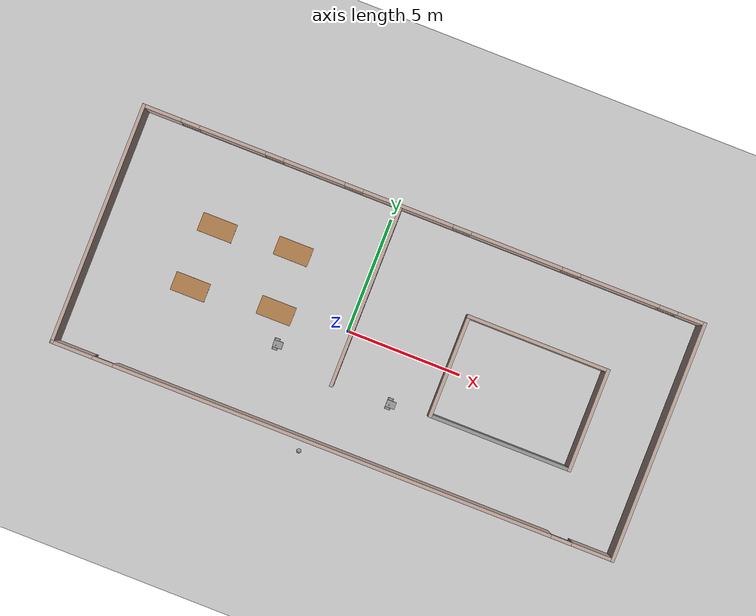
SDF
<sdf version="1.6">
 <world name="default">
  <plugin name="welcome" filename="libwelcome.so"/>
  <light name="sun" type="directional">
   <pose>0 0 10 0 -0 0</pose>
   <diffuse>0.8 0.8 0.8 1</diffuse>
   <specular>0.2 0.2 0.2 1</specular>
   <attenuation>
    <range>1000</range>
    <constant>0.9</constant>
    <linear>0.01</linear>
    <quadratic>0.001</quadratic>
   </attenuation>
   <direction>-0.5 0.1 -0.9</direction>
  </light>
  <model name="ground_plane">
   <static>1</static>
   <link name="link">
    <collision name="collision">
     <geometry><plane><normal>0 0 1</normal><size>100 100</size></plane></geometry>
     <surface>
      <contact><collide_bitmask>65535</collide_bitmask></contact>
      <friction><ode><mu>100</mu><mu2>50</mu2></ode></friction>
     </surface>
    </collision>
    <visual name="visual">
     <cast_shadows>0</cast_shadows>
     <geometry><plane><normal>0 0 1</normal><size>100 100</size></plane></geometry>
     <material>
      <script><uri>file://media/materials/scripts/gazebo.material</uri><name>Gazebo/Grey</name></script>
     </material>
    </visual>
   </link>
  </model>
  <gravity>0 0 -9.8</gravity>
  <magnetic_field>6e-06 2.3e-05 -4.2e-05</magnetic_field>
  <atmosphere type="adiabatic"/>
  <physics name="default_physics" default="0" type="ode">
   <max_step_size>0.001</max_step_size>
   <real_time_factor>1</real_time_factor>
   <real_time_update_rate>1000</real_time_update_rate>
  </physics>
  <scene><ambient>0.4 0.4 0.4 1</ambient><background>0.7 0.7 0.7 1</background><shadows>1</shadows></scene>
  <audio><device>default</device></audio>
  <spherical_coordinates>
   <surface_model>EARTH_WGS84</surface_model>
   <latitude_deg>0</latitude_deg>
   <longitude_deg>0</longitude_deg>
   <elevation>0</elevation>
   <heading_deg>0</heading_deg>
  </spherical_coordinates>
  <model name="mybuilding">
   <pose>1.1968 0.407049 0 0 -0 0</pose>
   <link name="Wall_1">
    <collision name="Wall_1_Collision">
     <geometry><box><size>10.5 0.15 2.5</size></box></geometry>
     <pose>0 0 1.25 0 -0 0</pose>
    </collision>
    <visual name="Wall_1_Visual">
     <pose>0 0 1.25 0 -0 0</pose>
     <geometry><box><size>10.5 0.15 2.5</size></box></geometry>
     <material>
      <script><uri>file://media/materials/scripts/gazebo.material</uri><name>Gazebo/Grey</name></script>
      <ambient>0.760784 0.662745 0.627451 1</ambient>
     </material>
     <meta><layer>0</layer></meta>
    </visual>
    <pose>-12.3 -0 0 0 -0 1.5708</pose>
   </link>
   <link name="Wall_10">
    <collision name="Wall_10_Collision">
     <geometry><box><size>4.5 0.15 2.5</size></box></geometry>
     <pose>0 0 1.25 0 -0 0</pose>
    </collision>
    <visual name="Wall_10_Visual">
     <pose>0 0 1.25 0 -0 0</pose>
     <geometry><box><size>4.5 0.15 2.5</size></box></geometry>
     <material>
      <script><uri>file://media/materials/scripts/gazebo.material</uri><name>Gazebo/Grey</name></script>
      <ambient>0.760784 0.662745 0.627451 1</ambient>
     </material>
     <meta><layer>0</layer></meta>
    </visual>
    <pose>9.31281 -0.20305 0 0 -0 1.5708</pose>
   </link>
   <link name="Wall_11">
    <collision name="Wall_11_Collision">
     <geometry><box><size>6.25 0.15 2.5</size></box></geometry>
     <pose>0 0 1.25 0 -0 0</pose>
    </collision>
    <visual name="Wall_11_Visual">
     <pose>0 0 1.25 0 -0 0</pose>
     <geometry><box><size>6.25 0.15 2.5</size></box></geometry>
     <material>
      <script><uri>file://media/materials/scripts/gazebo.material</uri><name>Gazebo/Grey</name></script>
      <ambient>0.760784 0.662745 0.627451 1</ambient>
     </material>
     <meta><layer>0</layer></meta>
    </visual>
    <pose>6.26281 1.97195 0 0 -0 3.14159</pose>
   </link>
   <link name="Wall_2">
    <pose>0 5.175 0 0 -0 0</pose>
    <visual name="Wall_2_Visual_0">
     <pose>-11.5143 0 1.25 0 -0 0</pose>
     <geometry><box><size>1.72131 0.15 2.5</size></box></geometry>
     <material>
      <script><uri>file://media/materials/scripts/gazebo.material</uri><name>Gazebo/Grey</name></script>
      <ambient>0.760784 0.662745 0.627451 1</ambient>
     </material>
     <meta><layer>0</layer></meta>
    </visual>
    <collision name="Wall_2_Collision_0">
     <geometry><box><size>1.72131 0.15 2.5</size></box></geometry>
     <pose>-11.5143 0 1.25 0 -0 0</pose>
    </collision>
    <visual name="Wall_2_Visual_1">
     <pose>0.860654 0 0.25 0 -0 0</pose>
     <geometry><box><size>23.0287 0.15 0.5</size></box></geometry>
     <material>
      <script><uri>file://media/materials/scripts/gazebo.material</uri><name>Gazebo/Grey</name></script>
      <ambient>0.760784 0.662745 0.627451 1</ambient>
     </material>
     <meta><layer>0</layer></meta>
    </visual>
    <collision name="Wall_2_Collision_1">
     <geometry><box><size>23.0287 0.15 0.5</size></box></geometry>
     <pose>0.860654 0 0.25 0 -0 0</pose>
    </collision>
    <visual name="Wall_2_Visual_2">
     <pose>-8.40681 0 1.5 0 -0 0</pose>
     <geometry><box><size>2.89377 0.15 2</size></box></geometry>
     <material>
      <script><uri>file://media/materials/scripts/gazebo.material</uri><name>Gazebo/Grey</name></script>
      <ambient>0.760784 0.662745 0.627451 1</ambient>
     </material>
     <meta><layer>0</layer></meta>
    </visual>
    <collision name="Wall_2_Collision_2">
     <geometry><box><size>2.89377 0.15 2</size></box></geometry>
     <pose>-8.40681 0 1.5 0 -0 0</pose>
    </collision>
    <visual name="Wall_2_Visual_3">
     <pose>-4.81857 0 1.5 0 -0 0</pose>
     <geometry><box><size>2.6827 0.15 2</size></box></geometry>
     <material>
      <script><uri>file://media/materials/scripts/gazebo.material</uri><name>Gazebo/Grey</name></script>
      <ambient>0.760784 0.662745 0.627451 1</ambient>
     </material>
     <meta><layer>0</layer></meta>
    </visual>
    <collision name="Wall_2_Collision_3">
     <geometry><box><size>2.6827 0.15 2</size></box></geometry>
     <pose>-4.81857 0 1.5 0 -0 0</pose>
    </collision>
    <visual name="Wall_2_Visual_4">
     <pose>-0.702659 0 1.5 0 -0 0</pose>
     <geometry><box><size>3.94913 0.15 2</size></box></geometry>
     <material>
      <script><uri>file://media/materials/scripts/gazebo.material</uri><name>Gazebo/Grey</name></script>
      <ambient>0.760784 0.662745 0.627451 1</ambient>
     </material>
     <meta><layer>0</layer></meta>
    </visual>
    <collision name="Wall_2_Collision_4">
     <geometry><box><size>3.94913 0.15 2</size></box></geometry>
     <pose>-0.702659 0 1.5 0 -0 0</pose>
    </collision>
    <visual name="Wall_2_Visual_5">
     <pose>4.06406 0 1.5 0 -0 0</pose>
     <geometry><box><size>3.98431 0.15 2</size></box></geometry>
     <material>
      <script><uri>file://media/materials/scripts/gazebo.material</uri><name>Gazebo/Grey</name></script>
      <ambient>0.760784 0.662745 0.627451 1</ambient>
     </material>
     <meta><layer>0</layer></meta>
    </visual>
    <collision name="Wall_2_Collision_5">
     <geometry><box><size>3.98431 0.15 2</size></box></geometry>
     <pose>4.06406 0 1.5 0 -0 0</pose>
    </collision>
    <visual name="Wall_2_Visual_6">
     <pose>8.58454 0 1.5 0 -0 0</pose>
     <geometry><box><size>3.45663 0.15 2</size></box></geometry>
     <material>
      <script><uri>file://media/materials/scripts/gazebo.material</uri><name>Gazebo/Grey</name></script>
      <ambient>0.760784 0.662745 0.627451 1</ambient>
     </material>
     <meta><layer>0</layer></meta>
    </visual>
    <collision name="Wall_2_Collision_6">
     <geometry><box><size>3.45663 0.15 2</size></box></geometry>
     <pose>8.58454 0 1.5 0 -0 0</pose>
    </collision>
    <visual name="Wall_2_Visual_7">
     <pose>11.7439 0 1.5 0 -0 0</pose>
     <geometry><box><size>1.26215 0.15 2</size></box></geometry>
     <material>
      <script><uri>file://media/materials/scripts/gazebo.material</uri><name>Gazebo/Grey</name></script>
      <ambient>0.760784 0.662745 0.627451 1</ambient>
     </material>
     <meta><layer>0</layer></meta>
    </visual>
    <collision name="Wall_2_Collision_7">
     <geometry><box><size>1.26215 0.15 2</size></box></geometry>
     <pose>11.7439 0 1.5 0 -0 0</pose>
    </collision>
    <visual name="Wall_2_Visual_8">
     <pose>-10.2537 0 1.9 0 -0 0</pose>
     <geometry><box><size>0.8 0.15 1.2</size></box></geometry>
     <material>
      <script><uri>file://media/materials/scripts/gazebo.material</uri><name>Gazebo/Grey</name></script>
      <ambient>0.760784 0.662745 0.627451 1</ambient>
     </material>
     <meta><layer>0</layer></meta>
    </visual>
    <collision name="Wall_2_Collision_8">
     <geometry><box><size>0.8 0.15 1.2</size></box></geometry>
     <pose>-10.2537 0 1.9 0 -0 0</pose>
    </collision>
    <visual name="Wall_2_Visual_9">
     <pose>-6.55992 0 1.9 0 -0 0</pose>
     <geometry><box><size>0.8 0.15 1.2</size></box></geometry>
     <material>
      <script><uri>file://media/materials/scripts/gazebo.material</uri><name>Gazebo/Grey</name></script>
      <ambient>0.760784 0.662745 0.627451 1</ambient>
     </material>
     <meta><layer>0</layer></meta>
    </visual>
    <collision name="Wall_2_Collision_9">
     <geometry><box><size>0.8 0.15 1.2</size></box></geometry>
     <pose>-6.55992 0 1.9 0 -0 0</pose>
    </collision>
    <visual name="Wall_2_Visual_10">
     <pose>-3.07722 0 1.9 0 -0 0</pose>
     <geometry><box><size>0.8 0.15 1.2</size></box></geometry>
     <material>
      <script><uri>file://media/materials/scripts/gazebo.material</uri><name>Gazebo/Grey</name></script>
      <ambient>0.760784 0.662745 0.627451 1</ambient>
     </material>
     <meta><layer>0</layer></meta>
    </visual>
    <collision name="Wall_2_Collision_10">
     <geometry><box><size>0.8 0.15 1.2</size></box></geometry>
     <pose>-3.07722 0 1.9 0 -0 0</pose>
    </collision>
    <visual name="Wall_2_Visual_11">
     <pose>1.67191 0 1.9 0 -0 0</pose>
     <geometry><box><size>0.8 0.15 1.2</size></box></geometry>
     <material>
      <script><uri>file://media/materials/scripts/gazebo.material</uri><name>Gazebo/Grey</name></script>
      <ambient>0.760784 0.662745 0.627451 1</ambient>
     </material>
     <meta><layer>0</layer></meta>
    </visual>
    <collision name="Wall_2_Collision_11">
     <geometry><box><size>0.8 0.15 1.2</size></box></geometry>
     <pose>1.67191 0 1.9 0 -0 0</pose>
    </collision>
    <visual name="Wall_2_Visual_12">
     <pose>6.45622 0 1.9 0 -0 0</pose>
     <geometry><box><size>0.8 0.15 1.2</size></box></geometry>
     <material>
      <script><uri>file://media/materials/scripts/gazebo.material</uri><name>Gazebo/Grey</name></script>
      <ambient>0.760784 0.662745 0.627451 1</ambient>
     </material>
     <meta><layer>0</layer></meta>
    </visual>
    <collision name="Wall_2_Collision_12">
     <geometry><box><size>0.8 0.15 1.2</size></box></geometry>
     <pose>6.45622 0 1.9 0 -0 0</pose>
    </collision>
    <visual name="Wall_2_Visual_13">
     <pose>10.7128 0 1.9 0 -0 0</pose>
     <geometry><box><size>0.8 0.15 1.2</size></box></geometry>
     <material>
      <script><uri>file://media/materials/scripts/gazebo.material</uri><name>Gazebo/Grey</name></script>
      <ambient>0.760784 0.662745 0.627451 1</ambient>
     </material>
     <meta><layer>0</layer></meta>
    </visual>
    <collision name="Wall_2_Collision_13">
     <geometry><box><size>0.8 0.15 1.2</size></box></geometry>
     <pose>10.7128 0 1.9 0 -0 0</pose>
    </collision>
   </link>
   <link name="Wall_3">
    <collision name="Wall_3_Collision">
     <geometry><box><size>10.5 0.15 2.5</size></box></geometry>
     <pose>0 0 1.25 0 -0 0</pose>
    </collision>
    <visual name="Wall_3_Visual">
     <pose>0 0 1.25 0 -0 0</pose>
     <geometry><box><size>10.5 0.15 2.5</size></box></geometry>
     <material>
      <script><uri>file://media/materials/scripts/gazebo.material</uri><name>Gazebo/Grey</name></script>
      <ambient>0.760784 0.662745 0.627451 1</ambient>
     </material>
     <meta><layer>0</layer></meta>
    </visual>
    <pose>12.3 -0 0 0 -0 -1.5708</pose>
   </link>
   <link name="Wall_4">
    <pose>0 -5.175 0 0 -0 3.14159</pose>
    <visual name="Wall_4_Visual_0">
     <pose>-11.4347 0 1.25 0 -0 0</pose>
     <geometry><box><size>1.88055 0.15 2.5</size></box></geometry>
     <material>
      <script><uri>file://media/materials/scripts/gazebo.material</uri><name>Gazebo/Grey</name></script>
      <ambient>0.760784 0.662745 0.627451 1</ambient>
     </material>
     <meta><layer>0</layer></meta>
    </visual>
    <collision name="Wall_4_Collision_0">
     <geometry><box><size>1.88055 0.15 2.5</size></box></geometry>
     <pose>-11.4347 0 1.25 0 -0 0</pose>
    </collision>
    <visual name="Wall_4_Visual_1">
     <pose>0.016673 0 1.25 0 -0 0</pose>
     <geometry><box><size>19.2223 0.15 2.5</size></box></geometry>
     <material>
      <script><uri>file://media/materials/scripts/gazebo.material</uri><name>Gazebo/Grey</name></script>
      <ambient>0.760784 0.662745 0.627451 1</ambient>
     </material>
     <meta><layer>0</layer></meta>
    </visual>
    <collision name="Wall_4_Collision_1">
     <geometry><box><size>19.2223 0.15 2.5</size></box></geometry>
     <pose>0.016673 0 1.25 0 -0 0</pose>
    </collision>
    <visual name="Wall_4_Visual_2">
     <pose>11.4514 0 1.25 0 -0 0</pose>
     <geometry><box><size>1.8472 0.15 2.5</size></box></geometry>
     <material>
      <script><uri>file://media/materials/scripts/gazebo.material</uri><name>Gazebo/Grey</name></script>
      <ambient>0.760784 0.662745 0.627451 1</ambient>
     </material>
     <meta><layer>0</layer></meta>
    </visual>
    <collision name="Wall_4_Collision_2">
     <geometry><box><size>1.8472 0.15 2.5</size></box></geometry>
     <pose>11.4514 0 1.25 0 -0 0</pose>
    </collision>
    <visual name="Wall_4_Visual_3">
     <pose>-10.0445 0 2.25 0 -0 0</pose>
     <geometry><box><size>0.9 0.15 0.5</size></box></geometry>
     <material>
      <script><uri>file://media/materials/scripts/gazebo.material</uri><name>Gazebo/Grey</name></script>
      <ambient>0.760784 0.662745 0.627451 1</ambient>
     </material>
     <meta><layer>0</layer></meta>
    </visual>
    <collision name="Wall_4_Collision_3">
     <geometry><box><size>0.9 0.15 0.5</size></box></geometry>
     <pose>-10.0445 0 2.25 0 -0 0</pose>
    </collision>
    <visual name="Wall_4_Visual_4">
     <pose>10.0778 0 2.25 0 -0 0</pose>
     <geometry><box><size>0.9 0.15 0.5</size></box></geometry>
     <material>
      <script><uri>file://media/materials/scripts/gazebo.material</uri><name>Gazebo/Grey</name></script>
      <ambient>0.760784 0.662745 0.627451 1</ambient>
     </material>
     <meta><layer>0</layer></meta>
    </visual>
    <collision name="Wall_4_Collision_4">
     <geometry><box><size>0.9 0.15 0.5</size></box></geometry>
     <pose>10.0778 0 2.25 0 -0 0</pose>
    </collision>
   </link>
   <link name="Wall_6">
    <collision name="Wall_6_Collision">
     <geometry><box><size>8 0.15 2.5</size></box></geometry>
     <pose>0 0 1.25 0 -0 0</pose>
    </collision>
    <visual name="Wall_6_Visual">
     <pose>0 0 1.25 0 -0 0</pose>
     <geometry><box><size>8 0.15 2.5</size></box></geometry>
     <material>
      <script><uri>file://media/materials/scripts/gazebo.material</uri><name>Gazebo/Grey</name></script>
      <ambient>0.760784 0.662745 0.627451 1</ambient>
     </material>
     <meta><layer>0</layer></meta>
    </visual>
    <pose>-1.00864 1.24822 0 0 -0 -1.5708</pose>
   </link>
   <link name="Wall_8">
    <collision name="Wall_8_Collision">
     <geometry><box><size>4.5 0.15 2.5</size></box></geometry>
     <pose>0 0 1.25 0 -0 0</pose>
    </collision>
    <visual name="Wall_8_Visual">
     <pose>0 0 1.25 0 -0 0</pose>
     <geometry><box><size>4.5 0.15 2.5</size></box></geometry>
     <material>
      <script><uri>file://media/materials/scripts/gazebo.material</uri><name>Gazebo/Grey</name></script>
      <ambient>0.760784 0.662745 0.627451 1</ambient>
     </material>
     <meta><layer>0</layer></meta>
    </visual>
    <pose>3.21281 -0.20305 0 0 -0 -1.5708</pose>
   </link>
   <link name="Wall_9">
    <collision name="Wall_9_Collision">
     <geometry><box><size>6.25 0.15 2.5</size></box></geometry>
     <pose>0 0 1.25 0 -0 0</pose>
    </collision>
    <visual name="Wall_9_Visual">
     <pose>0 0 1.25 0 -0 0</pose>
     <geometry><box><size>6.25 0.15 2.5</size></box></geometry>
     <material>
      <script><uri>file://media/materials/scripts/gazebo.material</uri><name>Gazebo/Grey</name></script>
      <ambient>1 1 1 1</ambient>
     </material>
     <meta><layer>0</layer></meta>
    </visual>
    <pose>6.26281 -2.37805 0 0 -0 0</pose>
   </link>
   <static>1</static>
  </model>
  <model name="myrobot">
   <link name="link_0">
    <inertial>
     <mass>1</mass>
     <inertia>
      <ixx>0.166667</ixx>
      <ixy>0</ixy>
      <ixz>0</ixz>
      <iyy>0.166667</iyy>
      <iyz>0</iyz>
      <izz>0.166667</izz>
     </inertia>
    </inertial>
    <pose>0.039967 -0.564596 0.577 0 -0 0</pose>
    <visual name="visual">
     <geometry><box><size>0.4 0.3 0.3</size></box></geometry>
     <material>
      <lighting>1</lighting>
      <script><uri>file://media/materials/scripts/gazebo.material</uri><name>Gazebo/Grey</name></script>
      <shader type="vertex"><normal_map>__default__</normal_map></shader>
      <ambient>0.3 0.3 0.3 1</ambient>
      <diffuse>0.7 0.7 0.7 1</diffuse>
      <specular>0.01 0.01 0.01 1</specular>
      <emissive>0 0 0 1</emissive>
     </material>
    </visual>
    <collision name="collision">
     <geometry><box><size>0.4 0.3 0.3</size></box></geometry>
     <surface>
      <friction>
       <ode><mu>1</mu><mu2>1</mu2><fdir1>0 0 0</fdir1><slip1>0</slip1><slip2>0</slip2></ode>
       <torsional>
        <coefficient>1</coefficient>
        <patch_radius>0</patch_radius>
        <surface_radius>0</surface_radius>
        <use_patch_radius>1</use_patch_radius>
        <ode><slip>0</slip></ode>
       </torsional>
      </friction>
      <bounce><restitution_coefficient>0</restitution_coefficient><threshold>1e+06</threshold></bounce>
      <contact>
       <collide_without_contact>0</collide_without_contact>
       <collide_without_contact_bitmask>1</collide_without_contact_bitmask>
       <collide_bitmask>1</collide_bitmask>
       <ode>
        <soft_cfm>0</soft_cfm>
        <soft_erp>0.2</soft_erp>
        <kp>1e+13</kp>
        <kd>1</kd>
        <max_vel>0.01</max_vel>
        <min_depth>0</min_depth>
       </ode>
       <bullet>
        <split_impulse>1</split_impulse>
        <split_impulse_penetration_threshold>-0.01</split_impulse_penetration_threshold>
        <soft_cfm>0</soft_cfm>
        <soft_erp>0.2</soft_erp>
        <kp>1e+13</kp>
        <kd>1</kd>
       </bullet>
      </contact>
     </surface>
    </collision>
   </link>
   <link name="link_1">
    <inertial>
     <mass>1</mass>
     <inertia><ixx>0.145833</ixx><ixy>0</ixy><ixz>0</ixz><iyy>0.145833</iyy><iyz>0</iyz><izz>0.125</izz></inertia>
    </inertial>
    <pose>-0.040033 -0.764596 0.477 1.5708 -0 0</pose>
    <visual name="visual">
     <geometry><cylinder><radius>0.12</radius><length>0.1</length></cylinder></geometry>
     <material>
      <lighting>1</lighting>
      <script><uri>file://media/materials/scripts/gazebo.material</uri><name>Gazebo/Grey</name></script>
      <shader type="vertex"><normal_map>__default__</normal_map></shader>
      <ambient>0.3 0.3 0.3 1</ambient>
      <diffuse>0.7 0.7 0.7 1</diffuse>
      <specular>0.01 0.01 0.01 1</specular>
      <emissive>0 0 0 1</emissive>
     </material>
    </visual>
    <collision name="collision">
     <geometry><cylinder><radius>0.12</radius><length>0.1</length></cylinder></geometry>
     <surface>
      <friction>
       <ode><mu>1</mu><mu2>1</mu2><fdir1>0 0 0</fdir1><slip1>0</slip1><slip2>0</slip2></ode>
       <torsional>
        <coefficient>1</coefficient>
        <patch_radius>0</patch_radius>
        <surface_radius>0</surface_radius>
        <use_patch_radius>1</use_patch_radius>
        <ode><slip>0</slip></ode>
       </torsional>
      </friction>
      <bounce><restitution_coefficient>0</restitution_coefficient><threshold>1e+06</threshold></bounce>
      <contact>
       <collide_without_contact>0</collide_without_contact>
       <collide_without_contact_bitmask>1</collide_without_contact_bitmask>
       <collide_bitmask>1</collide_bitmask>
       <ode>
        <soft_cfm>0</soft_cfm>
        <soft_erp>0.2</soft_erp>
        <kp>1e+13</kp>
        <kd>1</kd>
        <max_vel>0.01</max_vel>
        <min_depth>0</min_depth>
       </ode>
       <bullet>
        <split_impulse>1</split_impulse>
        <split_impulse_penetration_threshold>-0.01</split_impulse_penetration_threshold>
        <soft_cfm>0</soft_cfm>
        <soft_erp>0.2</soft_erp>
        <kp>1e+13</kp>
        <kd>1</kd>
       </bullet>
      </contact>
     </surface>
    </collision>
   </link>
   <link name="link_1_clone">
    <inertial>
     <mass>1</mass>
     <inertia><ixx>0.145833</ixx><ixy>0</ixy><ixz>0</ixz><iyy>0.145833</iyy><iyz>0</iyz><izz>0.125</izz></inertia>
    </inertial>
    <pose>-0.040033 -0.364596 0.477 1.5708 -0 0</pose>
    <visual name="visual">
     <geometry><cylinder><radius>0.12</radius><length>0.1</length></cylinder></geometry>
     <material>
      <lighting>1</lighting>
      <script><uri>file://media/materials/scripts/gazebo.material</uri><name>Gazebo/Grey</name></script>
      <shader type="vertex"><normal_map>__default__</normal_map></shader>
      <ambient>0.3 0.3 0.3 1</ambient>
      <diffuse>0.7 0.7 0.7 1</diffuse>
      <specular>0.01 0.01 0.01 1</specular>
      <emissive>0 0 0 1</emissive>
     </material>
    </visual>
    <collision name="collision">
     <geometry><cylinder><radius>0.12</radius><length>0.1</length></cylinder></geometry>
     <surface>
      <friction>
       <ode><mu>1</mu><mu2>1</mu2><fdir1>0 0 0</fdir1><slip1>0</slip1><slip2>0</slip2></ode>
       <torsional>
        <coefficient>1</coefficient>
        <patch_radius>0</patch_radius>
        <surface_radius>0</surface_radius>
        <use_patch_radius>1</use_patch_radius>
        <ode><slip>0</slip></ode>
       </torsional>
      </friction>
      <bounce><restitution_coefficient>0</restitution_coefficient><threshold>1e+06</threshold></bounce>
      <contact>
       <collide_without_contact>0</collide_without_contact>
       <collide_without_contact_bitmask>1</collide_without_contact_bitmask>
       <collide_bitmask>1</collide_bitmask>
       <ode>
        <soft_cfm>0</soft_cfm>
        <soft_erp>0.2</soft_erp>
        <kp>1e+13</kp>
        <kd>1</kd>
        <max_vel>0.01</max_vel>
        <min_depth>0</min_depth>
       </ode>
       <bullet>
        <split_impulse>1</split_impulse>
        <split_impulse_penetration_threshold>-0.01</split_impulse_penetration_threshold>
        <soft_cfm>0</soft_cfm>
        <soft_erp>0.2</soft_erp>
        <kp>1e+13</kp>
        <kd>1</kd>
       </bullet>
      </contact>
     </surface>
    </collision>
   </link>
   <link name="link_2">
    <inertial>
     <mass>1</mass>
     <inertia><ixx>0.1</ixx><ixy>0</ixy><ixz>0</ixz><iyy>0.1</iyy><iyz>0</iyz><izz>0.1</izz></inertia>
    </inertial>
    <pose>0.189967 -0.564596 0.392 0 -0 0</pose>
    <visual name="visual">
     <geometry><sphere><radius>0.035</radius></sphere></geometry>
     <material>
      <lighting>1</lighting>
      <script><uri>file://media/materials/scripts/gazebo.material</uri><name>Gazebo/Grey</name></script>
      <shader type="vertex"><normal_map>__default__</normal_map></shader>
      <ambient>0.3 0.3 0.3 1</ambient>
      <diffuse>0.7 0.7 0.7 1</diffuse>
      <specular>0.01 0.01 0.01 1</specular>
      <emissive>0 0 0 1</emissive>
     </material>
    </visual>
    <collision name="collision">
     <geometry><sphere><radius>0.035</radius></sphere></geometry>
     <surface>
      <friction>
       <ode><mu>1</mu><mu2>1</mu2><fdir1>0 0 0</fdir1><slip1>0</slip1><slip2>0</slip2></ode>
       <torsional>
        <coefficient>1</coefficient>
        <patch_radius>0</patch_radius>
        <surface_radius>0</surface_radius>
        <use_patch_radius>1</use_patch_radius>
        <ode><slip>0</slip></ode>
       </torsional>
      </friction>
      <bounce><restitution_coefficient>0</restitution_coefficient><threshold>1e+06</threshold></bounce>
      <contact>
       <collide_without_contact>0</collide_without_contact>
       <collide_without_contact_bitmask>1</collide_without_contact_bitmask>
       <collide_bitmask>1</collide_bitmask>
       <ode>
        <soft_cfm>0</soft_cfm>
        <soft_erp>0.2</soft_erp>
        <kp>1e+13</kp>
        <kd>1</kd>
        <max_vel>0.01</max_vel>
        <min_depth>0</min_depth>
       </ode>
       <bullet>
        <split_impulse>1</split_impulse>
        <split_impulse_penetration_threshold>-0.01</split_impulse_penetration_threshold>
        <soft_cfm>0</soft_cfm>
        <soft_erp>0.2</soft_erp>
        <kp>1e+13</kp>
        <kd>1</kd>
       </bullet>
      </contact>
     </surface>
    </collision>
   </link>
   <link name="link_3">
    <inertial>
     <mass>1</mass>
     <inertia>
      <ixx>0.166667</ixx>
      <ixy>0</ixy>
      <ixz>0</ixz>
      <iyy>0.166667</iyy>
      <iyz>0</iyz>
      <izz>0.166667</izz>
     </inertia>
    </inertial>
    <pose>-0.025033 -0.622096 0.877 0 -0 0</pose>
    <visual name="visual">
     <geometry><box><size>0.02 0.05 0.3</size></box></geometry>
     <material>
      <lighting>1</lighting>
      <script><uri>file://media/materials/scripts/gazebo.material</uri><name>Gazebo/Grey</name></script>
      <shader type="vertex"><normal_map>__default__</normal_map></shader>
      <ambient>0.3 0.3 0.3 1</ambient>
      <diffuse>0.7 0.7 0.7 1</diffuse>
      <specular>0.01 0.01 0.01 1</specular>
      <emissive>0 0 0 1</emissive>
     </material>
    </visual>
    <collision name="collision">
     <geometry><box><size>0.02 0.05 0.3</size></box></geometry>
     <surface>
      <friction>
       <ode><mu>1</mu><mu2>1</mu2><fdir1>0 0 0</fdir1><slip1>0</slip1><slip2>0</slip2></ode>
       <torsional>
        <coefficient>1</coefficient>
        <patch_radius>0</patch_radius>
        <surface_radius>0</surface_radius>
        <use_patch_radius>1</use_patch_radius>
        <ode><slip>0</slip></ode>
       </torsional>
      </friction>
      <bounce><restitution_coefficient>0</restitution_coefficient><threshold>1e+06</threshold></bounce>
      <contact>
       <collide_without_contact>0</collide_without_contact>
       <collide_without_contact_bitmask>1</collide_without_contact_bitmask>
       <collide_bitmask>1</collide_bitmask>
       <ode>
        <soft_cfm>0</soft_cfm>
        <soft_erp>0.2</soft_erp>
        <kp>1e+13</kp>
        <kd>1</kd>
        <max_vel>0.01</max_vel>
        <min_depth>0</min_depth>
       </ode>
       <bullet>
        <split_impulse>1</split_impulse>
        <split_impulse_penetration_threshold>-0.01</split_impulse_penetration_threshold>
        <soft_cfm>0</soft_cfm>
        <soft_erp>0.2</soft_erp>
        <kp>1e+13</kp>
        <kd>1</kd>
       </bullet>
      </contact>
     </surface>
    </collision>
   </link>
   <joint name="link_0_JOINT_0" type="revolute">
    <parent>link_0</parent>
    <child>link_1</child>
    <axis>
     <xyz>0 0 1</xyz>
     <use_parent_model_frame>0</use_parent_model_frame>
     <limit>
      <lower>-1.79769e+308</lower>
      <upper>1.79769e+308</upper>
      <effort>-1</effort>
      <velocity>-1</velocity>
     </limit>
     <dynamics>
      <spring_reference>0</spring_reference>
      <spring_stiffness>0</spring_stiffness>
      <damping>0</damping>
      <friction>0</friction>
     </dynamics>
    </axis>
    <physics>
     <ode><limit><cfm>0</cfm><erp>0.2</erp></limit><suspension><cfm>0</cfm><erp>0.2</erp></suspension></ode>
    </physics>
   </joint>
   <joint name="link_0_JOINT_1" type="revolute">
    <parent>link_0</parent>
    <child>link_1_clone</child>
    <axis>
     <xyz>0 0 1</xyz>
     <use_parent_model_frame>0</use_parent_model_frame>
     <limit>
      <lower>-1.79769e+308</lower>
      <upper>1.79769e+308</upper>
      <effort>-1</effort>
      <velocity>-1</velocity>
     </limit>
     <dynamics>
      <spring_reference>0</spring_reference>
      <spring_stiffness>0</spring_stiffness>
      <damping>0</damping>
     </dynamics>
    </axis>
    <physics>
     <ode><limit><cfm>0</cfm><erp>0.2</erp></limit><suspension><cfm>0</cfm><erp>0.2</erp></suspension></ode>
    </physics>
   </joint>
   <joint name="link_0_JOINT_2" type="ball">
    <parent>link_0</parent>
    <child>link_2</child>
    <physics>
     <ode><limit><cfm>0</cfm><erp>0.2</erp></limit><suspension><cfm>0</cfm><erp>0.2</erp></suspension></ode>
    </physics>
   </joint>
   <joint name="link_0_JOINT_3" type="revolute">
    <parent>link_0</parent>
    <child>link_3</child>
    <pose>0 0 -0.15 0 -0 0</pose>
    <axis>
     <xyz>0 1 0</xyz>
     <use_parent_model_frame>0</use_parent_model_frame>
     <limit>
      <lower>-1.79769e+308</lower>
      <upper>1.79769e+308</upper>
      <effort>-1</effort>
      <velocity>-1</velocity>
     </limit>
     <dynamics>
      <spring_reference>0</spring_reference>
      <spring_stiffness>0</spring_stiffness>
      <damping>0</damping>
     </dynamics>
    </axis>
    <physics>
     <ode><limit><cfm>0</cfm><erp>0.2</erp></limit><suspension><cfm>0</cfm><erp>0.2</erp></suspension></ode>
    </physics>
   </joint>
   <static>0</static>
   <pose>-2.59627 -1.00001 -0.357008 -4e-06 -1.1e-05 0.066311</pose>
  </model>
  <model name="myrobot_0">
   <link name="link_0">
    <inertial>
     <mass>1</mass>
     <inertia>
      <ixx>0.166667</ixx>
      <ixy>0</ixy>
      <ixz>0</ixz>
      <iyy>0.166667</iyy>
      <iyz>0</iyz>
      <izz>0.166667</izz>
     </inertia>
    </inertial>
    <pose>0.039967 -0.564596 0.577 0 -0 0</pose>
    <visual name="visual">
     <geometry><box><size>0.4 0.3 0.3</size></box></geometry>
     <material>
      <lighting>1</lighting>
      <script><uri>file://media/materials/scripts/gazebo.material</uri><name>Gazebo/Grey</name></script>
      <shader type="vertex"><normal_map>__default__</normal_map></shader>
      <ambient>0.3 0.3 0.3 1</ambient>
      <diffuse>0.7 0.7 0.7 1</diffuse>
      <specular>0.01 0.01 0.01 1</specular>
      <emissive>0 0 0 1</emissive>
     </material>
    </visual>
    <collision name="collision">
     <geometry><box><size>0.4 0.3 0.3</size></box></geometry>
     <surface>
      <friction>
       <ode><mu>1</mu><mu2>1</mu2><fdir1>0 0 0</fdir1><slip1>0</slip1><slip2>0</slip2></ode>
       <torsional>
        <coefficient>1</coefficient>
        <patch_radius>0</patch_radius>
        <surface_radius>0</surface_radius>
        <use_patch_radius>1</use_patch_radius>
        <ode><slip>0</slip></ode>
       </torsional>
      </friction>
      <bounce><restitution_coefficient>0</restitution_coefficient><threshold>1e+06</threshold></bounce>
      <contact>
       <collide_without_contact>0</collide_without_contact>
       <collide_without_contact_bitmask>1</collide_without_contact_bitmask>
       <collide_bitmask>1</collide_bitmask>
       <ode>
        <soft_cfm>0</soft_cfm>
        <soft_erp>0.2</soft_erp>
        <kp>1e+13</kp>
        <kd>1</kd>
        <max_vel>0.01</max_vel>
        <min_depth>0</min_depth>
       </ode>
       <bullet>
        <split_impulse>1</split_impulse>
        <split_impulse_penetration_threshold>-0.01</split_impulse_penetration_threshold>
        <soft_cfm>0</soft_cfm>
        <soft_erp>0.2</soft_erp>
        <kp>1e+13</kp>
        <kd>1</kd>
       </bullet>
      </contact>
     </surface>
    </collision>
   </link>
   <link name="link_1">
    <inertial>
     <mass>1</mass>
     <inertia><ixx>0.145833</ixx><ixy>0</ixy><ixz>0</ixz><iyy>0.145833</iyy><iyz>0</iyz><izz>0.125</izz></inertia>
    </inertial>
    <pose>-0.040033 -0.764596 0.477 1.5708 -0 0</pose>
    <visual name="visual">
     <geometry><cylinder><radius>0.12</radius><length>0.1</length></cylinder></geometry>
     <material>
      <lighting>1</lighting>
      <script><uri>file://media/materials/scripts/gazebo.material</uri><name>Gazebo/Grey</name></script>
      <shader type="vertex"><normal_map>__default__</normal_map></shader>
      <ambient>0.3 0.3 0.3 1</ambient>
      <diffuse>0.7 0.7 0.7 1</diffuse>
      <specular>0.01 0.01 0.01 1</specular>
      <emissive>0 0 0 1</emissive>
     </material>
    </visual>
    <collision name="collision">
     <geometry><cylinder><radius>0.12</radius><length>0.1</length></cylinder></geometry>
     <surface>
      <friction>
       <ode><mu>1</mu><mu2>1</mu2><fdir1>0 0 0</fdir1><slip1>0</slip1><slip2>0</slip2></ode>
       <torsional>
        <coefficient>1</coefficient>
        <patch_radius>0</patch_radius>
        <surface_radius>0</surface_radius>
        <use_patch_radius>1</use_patch_radius>
        <ode><slip>0</slip></ode>
       </torsional>
      </friction>
      <bounce><restitution_coefficient>0</restitution_coefficient><threshold>1e+06</threshold></bounce>
      <contact>
       <collide_without_contact>0</collide_without_contact>
       <collide_without_contact_bitmask>1</collide_without_contact_bitmask>
       <collide_bitmask>1</collide_bitmask>
       <ode>
        <soft_cfm>0</soft_cfm>
        <soft_erp>0.2</soft_erp>
        <kp>1e+13</kp>
        <kd>1</kd>
        <max_vel>0.01</max_vel>
        <min_depth>0</min_depth>
       </ode>
       <bullet>
        <split_impulse>1</split_impulse>
        <split_impulse_penetration_threshold>-0.01</split_impulse_penetration_threshold>
        <soft_cfm>0</soft_cfm>
        <soft_erp>0.2</soft_erp>
        <kp>1e+13</kp>
        <kd>1</kd>
       </bullet>
      </contact>
     </surface>
    </collision>
   </link>
   <link name="link_1_clone">
    <inertial>
     <mass>1</mass>
     <inertia><ixx>0.145833</ixx><ixy>0</ixy><ixz>0</ixz><iyy>0.145833</iyy><iyz>0</iyz><izz>0.125</izz></inertia>
    </inertial>
    <pose>-0.040033 -0.364596 0.477 1.5708 -0 0</pose>
    <visual name="visual">
     <geometry><cylinder><radius>0.12</radius><length>0.1</length></cylinder></geometry>
     <material>
      <lighting>1</lighting>
      <script><uri>file://media/materials/scripts/gazebo.material</uri><name>Gazebo/Grey</name></script>
      <shader type="vertex"><normal_map>__default__</normal_map></shader>
      <ambient>0.3 0.3 0.3 1</ambient>
      <diffuse>0.7 0.7 0.7 1</diffuse>
      <specular>0.01 0.01 0.01 1</specular>
      <emissive>0 0 0 1</emissive>
     </material>
    </visual>
    <collision name="collision">
     <geometry><cylinder><radius>0.12</radius><length>0.1</length></cylinder></geometry>
     <surface>
      <friction>
       <ode><mu>1</mu><mu2>1</mu2><fdir1>0 0 0</fdir1><slip1>0</slip1><slip2>0</slip2></ode>
       <torsional>
        <coefficient>1</coefficient>
        <patch_radius>0</patch_radius>
        <surface_radius>0</surface_radius>
        <use_patch_radius>1</use_patch_radius>
        <ode><slip>0</slip></ode>
       </torsional>
      </friction>
      <bounce><restitution_coefficient>0</restitution_coefficient><threshold>1e+06</threshold></bounce>
      <contact>
       <collide_without_contact>0</collide_without_contact>
       <collide_without_contact_bitmask>1</collide_without_contact_bitmask>
       <collide_bitmask>1</collide_bitmask>
       <ode>
        <soft_cfm>0</soft_cfm>
        <soft_erp>0.2</soft_erp>
        <kp>1e+13</kp>
        <kd>1</kd>
        <max_vel>0.01</max_vel>
        <min_depth>0</min_depth>
       </ode>
       <bullet>
        <split_impulse>1</split_impulse>
        <split_impulse_penetration_threshold>-0.01</split_impulse_penetration_threshold>
        <soft_cfm>0</soft_cfm>
        <soft_erp>0.2</soft_erp>
        <kp>1e+13</kp>
        <kd>1</kd>
       </bullet>
      </contact>
     </surface>
    </collision>
   </link>
   <link name="link_2">
    <inertial>
     <mass>1</mass>
     <inertia><ixx>0.1</ixx><ixy>0</ixy><ixz>0</ixz><iyy>0.1</iyy><iyz>0</iyz><izz>0.1</izz></inertia>
    </inertial>
    <pose>0.189967 -0.564596 0.392 0 -0 0</pose>
    <visual name="visual">
     <geometry><sphere><radius>0.035</radius></sphere></geometry>
     <material>
      <lighting>1</lighting>
      <script><uri>file://media/materials/scripts/gazebo.material</uri><name>Gazebo/Grey</name></script>
      <shader type="vertex"><normal_map>__default__</normal_map></shader>
      <ambient>0.3 0.3 0.3 1</ambient>
      <diffuse>0.7 0.7 0.7 1</diffuse>
      <specular>0.01 0.01 0.01 1</specular>
      <emissive>0 0 0 1</emissive>
     </material>
    </visual>
    <collision name="collision">
     <geometry><sphere><radius>0.035</radius></sphere></geometry>
     <surface>
      <friction>
       <ode><mu>1</mu><mu2>1</mu2><fdir1>0 0 0</fdir1><slip1>0</slip1><slip2>0</slip2></ode>
       <torsional>
        <coefficient>1</coefficient>
        <patch_radius>0</patch_radius>
        <surface_radius>0</surface_radius>
        <use_patch_radius>1</use_patch_radius>
        <ode><slip>0</slip></ode>
       </torsional>
      </friction>
      <bounce><restitution_coefficient>0</restitution_coefficient><threshold>1e+06</threshold></bounce>
      <contact>
       <collide_without_contact>0</collide_without_contact>
       <collide_without_contact_bitmask>1</collide_without_contact_bitmask>
       <collide_bitmask>1</collide_bitmask>
       <ode>
        <soft_cfm>0</soft_cfm>
        <soft_erp>0.2</soft_erp>
        <kp>1e+13</kp>
        <kd>1</kd>
        <max_vel>0.01</max_vel>
        <min_depth>0</min_depth>
       </ode>
       <bullet>
        <split_impulse>1</split_impulse>
        <split_impulse_penetration_threshold>-0.01</split_impulse_penetration_threshold>
        <soft_cfm>0</soft_cfm>
        <soft_erp>0.2</soft_erp>
        <kp>1e+13</kp>
        <kd>1</kd>
       </bullet>
      </contact>
     </surface>
    </collision>
   </link>
   <link name="link_3">
    <inertial>
     <mass>1</mass>
     <inertia>
      <ixx>0.166667</ixx>
      <ixy>0</ixy>
      <ixz>0</ixz>
      <iyy>0.166667</iyy>
      <iyz>0</iyz>
      <izz>0.166667</izz>
     </inertia>
    </inertial>
    <pose>-0.025033 -0.622096 0.877 0 -0 0</pose>
    <visual name="visual">
     <geometry><box><size>0.02 0.05 0.3</size></box></geometry>
     <material>
      <lighting>1</lighting>
      <script><uri>file://media/materials/scripts/gazebo.material</uri><name>Gazebo/Grey</name></script>
      <shader type="vertex"><normal_map>__default__</normal_map></shader>
      <ambient>0.3 0.3 0.3 1</ambient>
      <diffuse>0.7 0.7 0.7 1</diffuse>
      <specular>0.01 0.01 0.01 1</specular>
      <emissive>0 0 0 1</emissive>
     </material>
    </visual>
    <collision name="collision">
     <geometry><box><size>0.02 0.05 0.3</size></box></geometry>
     <surface>
      <friction>
       <ode><mu>1</mu><mu2>1</mu2><fdir1>0 0 0</fdir1><slip1>0</slip1><slip2>0</slip2></ode>
       <torsional>
        <coefficient>1</coefficient>
        <patch_radius>0</patch_radius>
        <surface_radius>0</surface_radius>
        <use_patch_radius>1</use_patch_radius>
        <ode><slip>0</slip></ode>
       </torsional>
      </friction>
      <bounce><restitution_coefficient>0</restitution_coefficient><threshold>1e+06</threshold></bounce>
      <contact>
       <collide_without_contact>0</collide_without_contact>
       <collide_without_contact_bitmask>1</collide_without_contact_bitmask>
       <collide_bitmask>1</collide_bitmask>
       <ode>
        <soft_cfm>0</soft_cfm>
        <soft_erp>0.2</soft_erp>
        <kp>1e+13</kp>
        <kd>1</kd>
        <max_vel>0.01</max_vel>
        <min_depth>0</min_depth>
       </ode>
       <bullet>
        <split_impulse>1</split_impulse>
        <split_impulse_penetration_threshold>-0.01</split_impulse_penetration_threshold>
        <soft_cfm>0</soft_cfm>
        <soft_erp>0.2</soft_erp>
        <kp>1e+13</kp>
        <kd>1</kd>
       </bullet>
      </contact>
     </surface>
    </collision>
   </link>
   <joint name="link_0_JOINT_0" type="revolute">
    <parent>link_0</parent>
    <child>link_1</child>
    <axis>
     <xyz>0 0 1</xyz>
     <use_parent_model_frame>0</use_parent_model_frame>
     <limit>
      <lower>-1.79769e+308</lower>
      <upper>1.79769e+308</upper>
      <effort>-1</effort>
      <velocity>-1</velocity>
     </limit>
     <dynamics>
      <spring_reference>0</spring_reference>
      <spring_stiffness>0</spring_stiffness>
      <damping>0</damping>
      <friction>0</friction>
     </dynamics>
    </axis>
    <physics>
     <ode><limit><cfm>0</cfm><erp>0.2</erp></limit><suspension><cfm>0</cfm><erp>0.2</erp></suspension></ode>
    </physics>
   </joint>
   <joint name="link_0_JOINT_1" type="revolute">
    <parent>link_0</parent>
    <child>link_1_clone</child>
    <axis>
     <xyz>0 0 1</xyz>
     <use_parent_model_frame>0</use_parent_model_frame>
     <limit>
      <lower>-1.79769e+308</lower>
      <upper>1.79769e+308</upper>
      <effort>-1</effort>
      <velocity>-1</velocity>
     </limit>
     <dynamics>
      <spring_reference>0</spring_reference>
      <spring_stiffness>0</spring_stiffness>
      <damping>0</damping>
     </dynamics>
    </axis>
    <physics>
     <ode><limit><cfm>0</cfm><erp>0.2</erp></limit><suspension><cfm>0</cfm><erp>0.2</erp></suspension></ode>
    </physics>
   </joint>
   <joint name="link_0_JOINT_2" type="ball">
    <parent>link_0</parent>
    <child>link_2</child>
    <physics>
     <ode><limit><cfm>0</cfm><erp>0.2</erp></limit><suspension><cfm>0</cfm><erp>0.2</erp></suspension></ode>
    </physics>
   </joint>
   <joint name="link_0_JOINT_3" type="revolute">
    <parent>link_0</parent>
    <child>link_3</child>
    <pose>0 0 -0.15 0 -0 0</pose>
    <axis>
     <xyz>0 1 0</xyz>
     <use_parent_model_frame>0</use_parent_model_frame>
     <limit>
      <lower>-1.79769e+308</lower>
      <upper>1.79769e+308</upper>
      <effort>-1</effort>
      <velocity>-1</velocity>
     </limit>
     <dynamics>
      <spring_reference>0</spring_reference>
      <spring_stiffness>0</spring_stiffness>
      <damping>0</damping>
     </dynamics>
    </axis>
    <physics>
     <ode><limit><cfm>0</cfm><erp>0.2</erp></limit><suspension><cfm>0</cfm><erp>0.2</erp></suspension></ode>
    </physics>
   </joint>
   <static>0</static>
   <pose>2.72119 -1.61049 -0.357001 -2e-06 -1e-05 0.008053</pose>
  </model>
  <model name="table">
   <static>1</static>
   <link name="link">
    <collision name="surface">
     <pose>0 0 1 0 -0 0</pose>
     <geometry><box><size>1.5 0.8 0.03</size></box></geometry>
     <surface><friction><ode><mu>0.6</mu><mu2>0.6</mu2></ode></friction></surface>
    </collision>
    <visual name="visual1">
     <pose>0 0 1 0 -0 0</pose>
     <geometry><box><size>1.5 0.8 0.03</size></box></geometry>
     <material>
      <script><uri>file://media/materials/scripts/gazebo.material</uri><name>Gazebo/Wood</name></script>
     </material>
    </visual>
    <collision name="front_left_leg">
     <pose>0.68 0.38 0.5 0 -0 0</pose>
     <geometry><cylinder><radius>0.02</radius><length>1</length></cylinder></geometry>
    </collision>
    <visual name="front_left_leg">
     <pose>0.68 0.38 0.5 0 -0 0</pose>
     <geometry><cylinder><radius>0.02</radius><length>1</length></cylinder></geometry>
     <material>
      <script><uri>file://media/materials/scripts/gazebo.material</uri><name>Gazebo/Grey</name></script>
     </material>
    </visual>
    <collision name="front_right_leg">
     <pose>0.68 -0.38 0.5 0 -0 0</pose>
     <geometry><cylinder><radius>0.02</radius><length>1</length></cylinder></geometry>
    </collision>
    <visual name="front_right_leg">
     <pose>0.68 -0.38 0.5 0 -0 0</pose>
     <geometry><cylinder><radius>0.02</radius><length>1</length></cylinder></geometry>
     <material>
      <script><uri>file://media/materials/scripts/gazebo.material</uri><name>Gazebo/Grey</name></script>
     </material>
    </visual>
    <collision name="back_right_leg">
     <pose>-0.68 -0.38 0.5 0 -0 0</pose>
     <geometry><cylinder><radius>0.02</radius><length>1</length></cylinder></geometry>
    </collision>
    <visual name="back_right_leg">
     <pose>-0.68 -0.38 0.5 0 -0 0</pose>
     <geometry><cylinder><radius>0.02</radius><length>1</length></cylinder></geometry>
     <material>
      <script><uri>file://media/materials/scripts/gazebo.material</uri><name>Gazebo/Grey</name></script>
     </material>
    </visual>
    <collision name="back_left_leg">
     <pose>-0.68 0.38 0.5 0 -0 0</pose>
     <geometry><cylinder><radius>0.02</radius><length>1</length></cylinder></geometry>
    </collision>
    <visual name="back_left_leg">
     <pose>-0.68 0.38 0.5 0 -0 0</pose>
     <geometry><cylinder><radius>0.02</radius><length>1</length></cylinder></geometry>
     <material>
      <script><uri>file://media/materials/scripts/gazebo.material</uri><name>Gazebo/Grey</name></script>
     </material>
    </visual>
   </link>
   <pose>-3.06972 -0.267572 0 0 -0 0</pose>
  </model>
  <model name="table_1">
   <static>1</static>
   <link name="link">
    <collision name="surface">
     <pose>0 0 1 0 -0 0</pose>
     <geometry><box><size>1.5 0.8 0.03</size></box></geometry>
     <surface><friction><ode><mu>0.6</mu><mu2>0.6</mu2></ode></friction></surface>
    </collision>
    <visual name="visual1">
     <pose>0 0 1 0 -0 0</pose>
     <geometry><box><size>1.5 0.8 0.03</size></box></geometry>
     <material>
      <script><uri>file://media/materials/scripts/gazebo.material</uri><name>Gazebo/Wood</name></script>
     </material>
    </visual>
    <collision name="front_left_leg">
     <pose>0.68 0.38 0.5 0 -0 0</pose>
     <geometry><cylinder><radius>0.02</radius><length>1</length></cylinder></geometry>
    </collision>
    <visual name="front_left_leg">
     <pose>0.68 0.38 0.5 0 -0 0</pose>
     <geometry><cylinder><radius>0.02</radius><length>1</length></cylinder></geometry>
     <material>
      <script><uri>file://media/materials/scripts/gazebo.material</uri><name>Gazebo/Grey</name></script>
     </material>
    </visual>
    <collision name="front_right_leg">
     <pose>0.68 -0.38 0.5 0 -0 0</pose>
     <geometry><cylinder><radius>0.02</radius><length>1</length></cylinder></geometry>
    </collision>
    <visual name="front_right_leg">
     <pose>0.68 -0.38 0.5 0 -0 0</pose>
     <geometry><cylinder><radius>0.02</radius><length>1</length></cylinder></geometry>
     <material>
      <script><uri>file://media/materials/scripts/gazebo.material</uri><name>Gazebo/Grey</name></script>
     </material>
    </visual>
    <collision name="back_right_leg">
     <pose>-0.68 -0.38 0.5 0 -0 0</pose>
     <geometry><cylinder><radius>0.02</radius><length>1</length></cylinder></geometry>
    </collision>
    <visual name="back_right_leg">
     <pose>-0.68 -0.38 0.5 0 -0 0</pose>
     <geometry><cylinder><radius>0.02</radius><length>1</length></cylinder></geometry>
     <material>
      <script><uri>file://media/materials/scripts/gazebo.material</uri><name>Gazebo/Grey</name></script>
     </material>
    </visual>
    <collision name="back_left_leg">
     <pose>-0.68 0.38 0.5 0 -0 0</pose>
     <geometry><cylinder><radius>0.02</radius><length>1</length></cylinder></geometry>
    </collision>
    <visual name="back_left_leg">
     <pose>-0.68 0.38 0.5 0 -0 0</pose>
     <geometry><cylinder><radius>0.02</radius><length>1</length></cylinder></geometry>
     <material>
      <script><uri>file://media/materials/scripts/gazebo.material</uri><name>Gazebo/Grey</name></script>
     </material>
    </visual>
   </link>
   <pose>-3.30115 2.2725 0 0 -0 0</pose>
  </model>
  <model name="table_2">
   <static>1</static>
   <link name="link">
    <collision name="surface">
     <pose>0 0 1 0 -0 0</pose>
     <geometry><box><size>1.5 0.8 0.03</size></box></geometry>
     <surface><friction><ode><mu>0.6</mu><mu2>0.6</mu2></ode></friction></surface>
    </collision>
    <visual name="visual1">
     <pose>0 0 1 0 -0 0</pose>
     <geometry><box><size>1.5 0.8 0.03</size></box></geometry>
     <material>
      <script><uri>file://media/materials/scripts/gazebo.material</uri><name>Gazebo/Wood</name></script>
     </material>
    </visual>
    <collision name="front_left_leg">
     <pose>0.68 0.38 0.5 0 -0 0</pose>
     <geometry><cylinder><radius>0.02</radius><length>1</length></cylinder></geometry>
    </collision>
    <visual name="front_left_leg">
     <pose>0.68 0.38 0.5 0 -0 0</pose>
     <geometry><cylinder><radius>0.02</radius><length>1</length></cylinder></geometry>
     <material>
      <script><uri>file://media/materials/scripts/gazebo.material</uri><name>Gazebo/Grey</name></script>
     </material>
    </visual>
    <collision name="front_right_leg">
     <pose>0.68 -0.38 0.5 0 -0 0</pose>
     <geometry><cylinder><radius>0.02</radius><length>1</length></cylinder></geometry>
    </collision>
    <visual name="front_right_leg">
     <pose>0.68 -0.38 0.5 0 -0 0</pose>
     <geometry><cylinder><radius>0.02</radius><length>1</length></cylinder></geometry>
     <material>
      <script><uri>file://media/materials/scripts/gazebo.material</uri><name>Gazebo/Grey</name></script>
     </material>
    </visual>
    <collision name="back_right_leg">
     <pose>-0.68 -0.38 0.5 0 -0 0</pose>
     <geometry><cylinder><radius>0.02</radius><length>1</length></cylinder></geometry>
    </collision>
    <visual name="back_right_leg">
     <pose>-0.68 -0.38 0.5 0 -0 0</pose>
     <geometry><cylinder><radius>0.02</radius><length>1</length></cylinder></geometry>
     <material>
      <script><uri>file://media/materials/scripts/gazebo.material</uri><name>Gazebo/Grey</name></script>
     </material>
    </visual>
    <collision name="back_left_leg">
     <pose>-0.68 0.38 0.5 0 -0 0</pose>
     <geometry><cylinder><radius>0.02</radius><length>1</length></cylinder></geometry>
    </collision>
    <visual name="back_left_leg">
     <pose>-0.68 0.38 0.5 0 -0 0</pose>
     <geometry><cylinder><radius>0.02</radius><length>1</length></cylinder></geometry>
     <material>
      <script><uri>file://media/materials/scripts/gazebo.material</uri><name>Gazebo/Grey</name></script>
     </material>
    </visual>
   </link>
   <pose>-6.58443 2.04473 0 0 -0 0</pose>
  </model>
  <model name="table_0">
   <static>1</static>
   <link name="link">
    <collision name="surface">
     <pose>0 0 1 0 -0 0</pose>
     <geometry><box><size>1.5 0.8 0.03</size></box></geometry>
     <surface><friction><ode><mu>0.6</mu><mu2>0.6</mu2></ode></friction></surface>
    </collision>
    <visual name="visual1">
     <pose>0 0 1 0 -0 0</pose>
     <geometry><box><size>1.5 0.8 0.03</size></box></geometry>
     <material>
      <script><uri>file://media/materials/scripts/gazebo.material</uri><name>Gazebo/Wood</name></script>
     </material>
    </visual>
    <collision name="front_left_leg">
     <pose>0.68 0.38 0.5 0 -0 0</pose>
     <geometry><cylinder><radius>0.02</radius><length>1</length></cylinder></geometry>
    </collision>
    <visual name="front_left_leg">
     <pose>0.68 0.38 0.5 0 -0 0</pose>
     <geometry><cylinder><radius>0.02</radius><length>1</length></cylinder></geometry>
     <material>
      <script><uri>file://media/materials/scripts/gazebo.material</uri><name>Gazebo/Grey</name></script>
     </material>
    </visual>
    <collision name="front_right_leg">
     <pose>0.68 -0.38 0.5 0 -0 0</pose>
     <geometry><cylinder><radius>0.02</radius><length>1</length></cylinder></geometry>
    </collision>
    <visual name="front_right_leg">
     <pose>0.68 -0.38 0.5 0 -0 0</pose>
     <geometry><cylinder><radius>0.02</radius><length>1</length></cylinder></geometry>
     <material>
      <script><uri>file://media/materials/scripts/gazebo.material</uri><name>Gazebo/Grey</name></script>
     </material>
    </visual>
    <collision name="back_right_leg">
     <pose>-0.68 -0.38 0.5 0 -0 0</pose>
     <geometry><cylinder><radius>0.02</radius><length>1</length></cylinder></geometry>
    </collision>
    <visual name="back_right_leg">
     <pose>-0.68 -0.38 0.5 0 -0 0</pose>
     <geometry><cylinder><radius>0.02</radius><length>1</length></cylinder></geometry>
     <material>
      <script><uri>file://media/materials/scripts/gazebo.material</uri><name>Gazebo/Grey</name></script>
     </material>
    </visual>
    <collision name="back_left_leg">
     <pose>-0.68 0.38 0.5 0 -0 0</pose>
     <geometry><cylinder><radius>0.02</radius><length>1</length></cylinder></geometry>
    </collision>
    <visual name="back_left_leg">
     <pose>-0.68 0.38 0.5 0 -0 0</pose>
     <geometry><cylinder><radius>0.02</radius><length>1</length></cylinder></geometry>
     <material>
      <script><uri>file://media/materials/scripts/gazebo.material</uri><name>Gazebo/Grey</name></script>
     </material>
    </visual>
   </link>
   <pose>-6.73436 -0.638026 0 0 -0 0</pose>
  </model>
  <model name="myball">
   <link name="link_0">
    <inertial>
     <mass>1</mass>
     <inertia><ixx>0.1</ixx><ixy>0</ixy><ixz>0</ixz><iyy>0.1</iyy><iyz>0</iyz><izz>0.1</izz></inertia>
    </inertial>
    <visual name="visual">
     <geometry><sphere><radius>0.1</radius></sphere></geometry>
     <material>
      <lighting>1</lighting>
      <script><uri>file://media/materials/scripts/gazebo.material</uri><name>Gazebo/Grey</name></script>
      <shader type="vertex"><normal_map>__default__</normal_map></shader>
      <ambient>1 1 1 1</ambient>
      <diffuse>1 1 1 1</diffuse>
      <specular>1 1 1 1</specular>
      <emissive>1 1 1 1</emissive>
     </material>
    </visual>
    <collision name="collision">
     <geometry><sphere><radius>0.1</radius></sphere></geometry>
     <surface>
      <friction>
       <ode><mu>1</mu><mu2>1</mu2><fdir1>0 0 0</fdir1><slip1>0</slip1><slip2>0</slip2></ode>
       <torsional>
        <coefficient>1</coefficient>
        <patch_radius>0</patch_radius>
        <surface_radius>0</surface_radius>
        <use_patch_radius>1</use_patch_radius>
        <ode><slip>0</slip></ode>
       </torsional>
      </friction>
      <bounce><restitution_coefficient>0</restitution_coefficient><threshold>1e+06</threshold></bounce>
      <contact>
       <collide_without_contact>0</collide_without_contact>
       <collide_without_contact_bitmask>1</collide_without_contact_bitmask>
       <collide_bitmask>1</collide_bitmask>
       <ode>
        <soft_cfm>0</soft_cfm>
        <soft_erp>0.2</soft_erp>
        <kp>1e+13</kp>
        <kd>1</kd>
        <max_vel>0.01</max_vel>
        <min_depth>0</min_depth>
       </ode>
       <bullet>
        <split_impulse>1</split_impulse>
        <split_impulse_penetration_threshold>-0.01</split_impulse_penetration_threshold>
        <soft_cfm>0</soft_cfm>
        <soft_erp>0.2</soft_erp>
        <kp>1e+13</kp>
        <kd>1</kd>
       </bullet>
      </contact>
     </surface>
    </collision>
   </link>
   <static>0</static>
   <pose>-0.09952 -5.37752 0.1 0 -0 0</pose>
  </model>
 </world>
</sdf>
